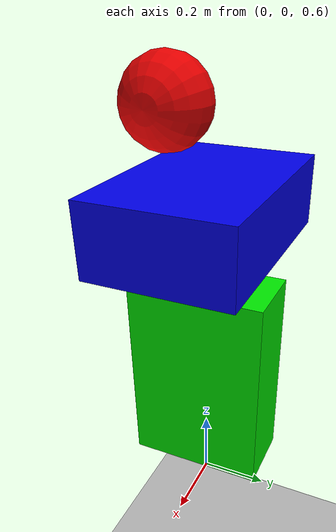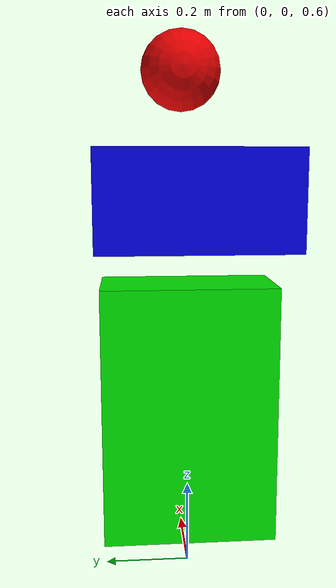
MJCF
<mujoco>
	<option gravity = "0 0 -9.81" />
	<worldbody>
        <light diffuse="1 1 1" pos="0 0 10" dir="0 0 -1"/>
		<geom type="plane" size="5 5 0.1" rgba="0.7 0.7 0.7 1"/>

		<body pos="0 0 1">
			<joint type="free"/>
			<geom type="box" size=".1 .2 .3" rgba="0 .9 0 1"/>
		</body>

		<body pos="0 0 1.5" euler = "0 90 0">
			<joint type="free"/>
			<geom type="box" size=".1 .2 .3" rgba="0 0 .9 1"/>
		</body>

		<body pos="0.2 0 1.8" euler = "0 90 0">
			<joint type="free"/>
			<geom type="sphere" size=".1" rgba=".9 0 0  1"/>
		</body>

	</worldbody>
</mujoco>
